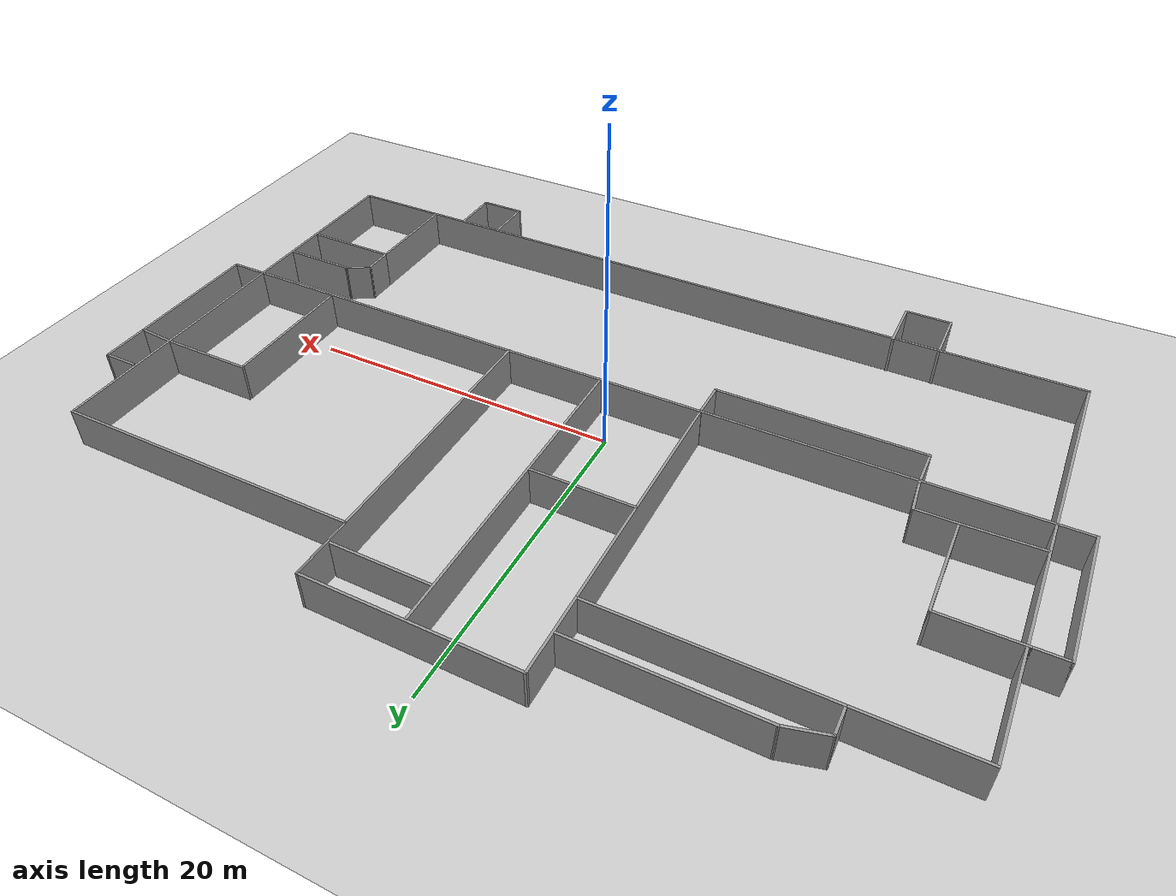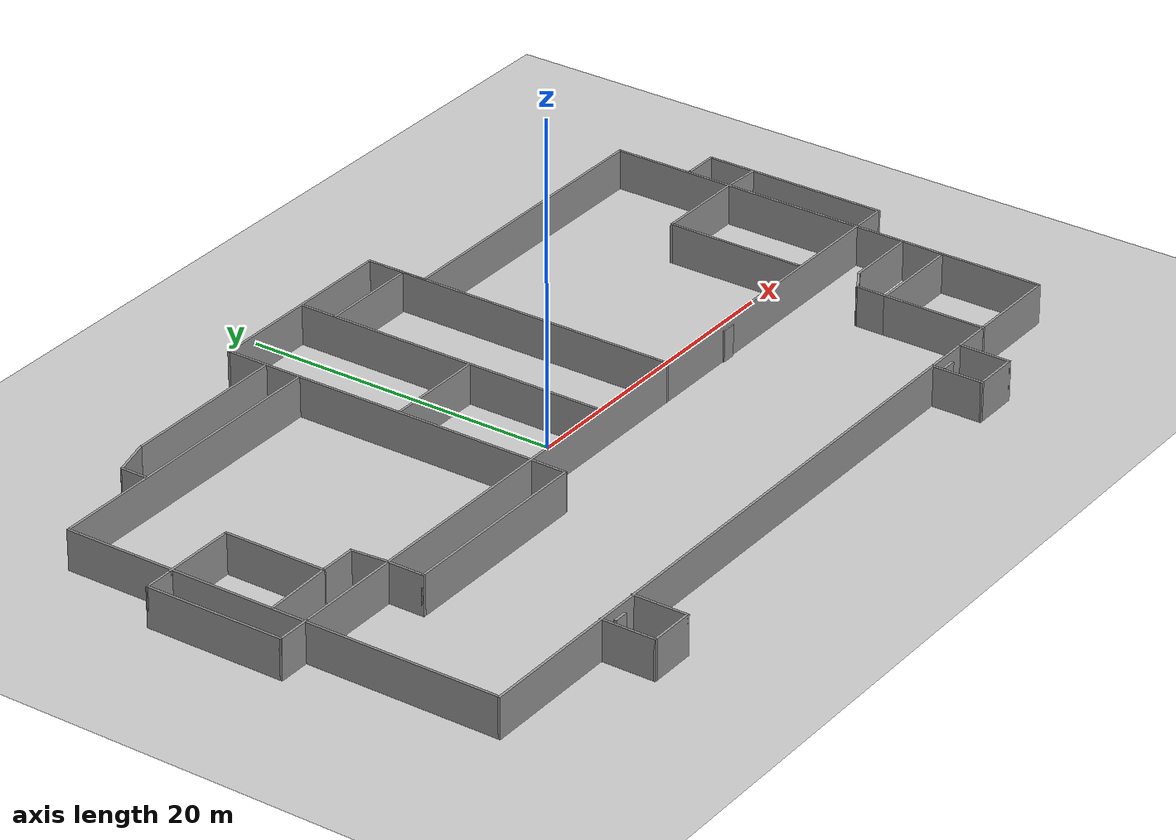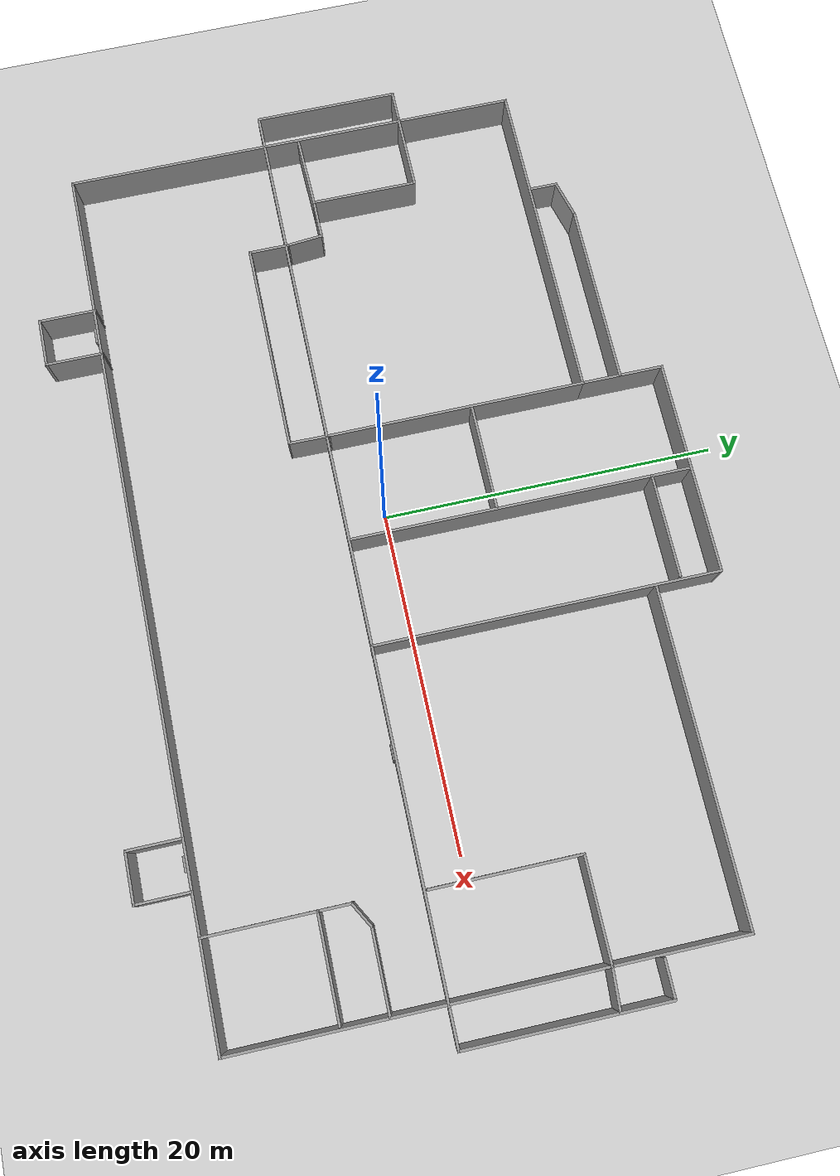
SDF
<sdf version="1.7">
 <world name="default">
  <model name="ground_plane">
   <static>1</static>
   <link name="link">
    <collision name="collision">
     <geometry><plane><normal>0 0 1</normal><size>100 100</size></plane></geometry>
     <surface>
      <contact><collide_bitmask>65535</collide_bitmask></contact>
      <friction><ode><mu>100</mu><mu2>50</mu2></ode></friction>
     </surface>
    </collision>
    <visual name="visual">
     <cast_shadows>0</cast_shadows>
     <geometry><plane><normal>0 0 1</normal><size>100 100</size></plane></geometry>
     <material>
      <script><uri>file://media/materials/scripts/gazebo.material</uri><name>Gazebo/Grey</name></script>
     </material>
    </visual>
   </link>
  </model>
  <model name="NankiAirport_1F">
   <pose>1.5023 0.065 0 0 -0 0</pose>
   <link name="Door_0">
    <collision name="Door_0_Collision">
     <geometry><box><size>0.9 0.17 2</size></box></geometry>
     <pose>0 0 1 0 -0 0</pose>
    </collision>
    <visual name="Door_0_Visual">
     <pose>0 0 1 0 -0 0</pose>
     <geometry><box><size>0.9 0.17 2</size></box></geometry>
     <material>
      <script><uri>file://media/materials/scripts/gazebo.material</uri><name>Gazebo/Grey</name></script>
     </material>
    </visual>
    <pose>-15.871 -14.7686 0 0 -0 0</pose>
   </link>
   <link name="Door_1">
    <collision name="Door_1_Collision">
     <geometry><box><size>0.9 0.17 2</size></box></geometry>
     <pose>0 0 1 0 -0 0</pose>
    </collision>
    <visual name="Door_1_Visual">
     <pose>0 0 1 0 -0 0</pose>
     <geometry><box><size>0.9 0.17 2</size></box></geometry>
     <material>
      <script><uri>file://media/materials/scripts/gazebo.material</uri><name>Gazebo/Grey</name></script>
     </material>
    </visual>
    <pose>15.7475 -14.7686 0 0 -0 0</pose>
   </link>
   <link name="Door_2">
    <collision name="Door_2_Collision">
     <geometry><box><size>0.9 0.17 2</size></box></geometry>
     <pose>0 0 1 0 -0 0</pose>
    </collision>
    <visual name="Door_2_Visual">
     <pose>0 0 1 0 -0 0</pose>
     <geometry><box><size>0.9 0.17 2</size></box></geometry>
     <material>
      <script><uri>file://media/materials/scripts/gazebo.material</uri><name>Gazebo/Grey</name></script>
     </material>
    </visual>
    <pose>12.288 -2.5395 0 0 -0 0</pose>
   </link>
   <link name="Wall_100">
    <collision name="Wall_100_Collision">
     <geometry><box><size>4.53601 0.15 2.5</size></box></geometry>
     <pose>0 0 1.25 0 -0 0</pose>
    </collision>
    <visual name="Wall_100_Visual">
     <pose>0 0 1.25 0 -0 0</pose>
     <geometry><box><size>4.53601 0.15 2.5</size></box></geometry>
     <material>
      <script><uri>file://media/materials/scripts/gazebo.material</uri><name>Gazebo/Grey</name></script>
      <ambient>1 1 1 1</ambient>
     </material>
     <meta><layer>0</layer></meta>
    </visual>
    <pose>-23.7699 -0.271537 0 0 -0 0.028499</pose>
   </link>
   <link name="Wall_102">
    <collision name="Wall_102_Collision">
     <geometry><box><size>2.25 0.15 2.5</size></box></geometry>
     <pose>0 0 1.25 0 -0 0</pose>
    </collision>
    <visual name="Wall_102_Visual">
     <pose>0 0 1.25 0 -0 0</pose>
     <geometry><box><size>2.25 0.15 2.5</size></box></geometry>
     <material>
      <script><uri>file://media/materials/scripts/gazebo.material</uri><name>Gazebo/Grey</name></script>
      <ambient>1 1 1 1</ambient>
     </material>
     <meta><layer>0</layer></meta>
    </visual>
    <pose>26.9722 -2.45905 0 0 -0 0</pose>
   </link>
   <link name="Wall_103">
    <collision name="Wall_103_Collision">
     <geometry><box><size>11.75 0.15 2.5</size></box></geometry>
     <pose>0 0 1.25 0 -0 0</pose>
    </collision>
    <visual name="Wall_103_Visual">
     <pose>0 0 1.25 0 -0 0</pose>
     <geometry><box><size>11.75 0.15 2.5</size></box></geometry>
     <material>
      <script><uri>file://media/materials/scripts/gazebo.material</uri><name>Gazebo/Grey</name></script>
      <ambient>1 1 1 1</ambient>
     </material>
     <meta><layer>0</layer></meta>
    </visual>
    <pose>28.0222 3.34095 0 0 -0 1.5708</pose>
   </link>
   <link name="Wall_104">
    <collision name="Wall_104_Collision">
     <geometry><box><size>2.25 0.15 2.5</size></box></geometry>
     <pose>0 0 1.25 0 -0 0</pose>
    </collision>
    <visual name="Wall_104_Visual">
     <pose>0 0 1.25 0 -0 0</pose>
     <geometry><box><size>2.25 0.15 2.5</size></box></geometry>
     <material>
      <script><uri>file://media/materials/scripts/gazebo.material</uri><name>Gazebo/Grey</name></script>
      <ambient>1 1 1 1</ambient>
     </material>
     <meta><layer>0</layer></meta>
    </visual>
    <pose>26.9722 9.14095 0 0 -0 3.14159</pose>
   </link>
   <link name="Wall_106">
    <collision name="Wall_106_Collision">
     <geometry><box><size>2.48872 0.15 2.5</size></box></geometry>
     <pose>0 0 1.25 0 -0 0</pose>
    </collision>
    <visual name="Wall_106_Visual">
     <pose>0 0 1.25 0 -0 0</pose>
     <geometry><box><size>2.48872 0.15 2.5</size></box></geometry>
     <material>
      <script><uri>file://media/materials/scripts/gazebo.material</uri><name>Gazebo/Grey</name></script>
      <ambient>1 1 1 1</ambient>
     </material>
     <meta><layer>0</layer></meta>
    </visual>
    <pose>26.8562 6.26323 0 0 -0 3.07274</pose>
   </link>
   <link name="Wall_108">
    <collision name="Wall_108_Collision">
     <geometry><box><size>1.75 0.15 2.5</size></box></geometry>
     <pose>0 0 1.25 0 -0 0</pose>
    </collision>
    <visual name="Wall_108_Visual">
     <pose>0 0 1.25 0 -0 0</pose>
     <geometry><box><size>1.75 0.15 2.5</size></box></geometry>
     <material>
      <script><uri>file://media/materials/scripts/gazebo.material</uri><name>Gazebo/Grey</name></script>
      <ambient>1 1 1 1</ambient>
     </material>
     <meta><layer>0</layer></meta>
    </visual>
    <pose>-19.6061 13.9018 0 0 -0 1.5708</pose>
   </link>
   <link name="Wall_109">
    <collision name="Wall_109_Collision">
     <geometry><box><size>2.5 0.15 2.5</size></box></geometry>
     <pose>0 0 1.25 0 -0 0</pose>
    </collision>
    <visual name="Wall_109_Visual">
     <pose>0 0 1.25 0 -0 0</pose>
     <geometry><box><size>2.5 0.15 2.5</size></box></geometry>
     <material>
      <script><uri>file://media/materials/scripts/gazebo.material</uri><name>Gazebo/Grey</name></script>
      <ambient>1 1 1 1</ambient>
     </material>
     <meta><layer>0</layer></meta>
    </visual>
    <pose>-18.4712 15.006 0 0 -0 0.261799</pose>
   </link>
   <link name="Wall_110">
    <collision name="Wall_110_Collision">
     <geometry><box><size>11 0.15 2.5</size></box></geometry>
     <pose>0 0 1.25 0 -0 0</pose>
    </collision>
    <visual name="Wall_110_Visual">
     <pose>0 0 1.25 0 -0 0</pose>
     <geometry><box><size>11 0.15 2.5</size></box></geometry>
     <material>
      <script><uri>file://media/materials/scripts/gazebo.material</uri><name>Gazebo/Grey</name></script>
      <ambient>1 1 1 1</ambient>
     </material>
     <meta><layer>0</layer></meta>
    </visual>
    <pose>-11.9112 15.3101 0 0 -0 0</pose>
   </link>
   <link name="Wall_32">
    <collision name="Wall_32_Collision">
     <geometry><box><size>52 0.15 2.5</size></box></geometry>
     <pose>0 0 1.25 0 -0 0</pose>
    </collision>
    <visual name="Wall_32_Visual">
     <pose>0 0 1.25 0 -0 0</pose>
     <geometry><box><size>52 0.15 2.5</size></box></geometry>
     <material>
      <script><uri>file://media/materials/scripts/gazebo.material</uri><name>Gazebo/Grey</name></script>
      <ambient>1 1 1 1</ambient>
     </material>
     <meta><layer>0</layer></meta>
    </visual>
    <pose>-0.002788 -2.45905 0 0 -0 0</pose>
   </link>
   <link name="Wall_41">
    <collision name="Wall_41_Collision">
     <geometry><box><size>3.25 0.15 2.5</size></box></geometry>
     <pose>0 0 1.25 0 -0 0</pose>
    </collision>
    <visual name="Wall_41_Visual">
     <pose>0 0 1.25 0 -0 0</pose>
     <geometry><box><size>3.25 0.15 2.5</size></box></geometry>
     <material>
      <script><uri>file://media/materials/scripts/gazebo.material</uri><name>Gazebo/Grey</name></script>
      <ambient>1 1 1 1</ambient>
     </material>
     <meta><layer>0</layer></meta>
    </visual>
    <pose>17.261 -16.1693 0 0 -0 -1.5708</pose>
   </link>
   <link name="Wall_42">
    <collision name="Wall_42_Collision">
     <geometry><box><size>3 0.15 2.5</size></box></geometry>
     <pose>0 0 1.25 0 -0 0</pose>
    </collision>
    <visual name="Wall_42_Visual">
     <pose>0 0 1.25 0 -0 0</pose>
     <geometry><box><size>3 0.15 2.5</size></box></geometry>
     <material>
      <script><uri>file://media/materials/scripts/gazebo.material</uri><name>Gazebo/Grey</name></script>
      <ambient>1 1 1 1</ambient>
     </material>
     <meta><layer>0</layer></meta>
    </visual>
    <pose>15.836 -17.7193 0 0 -0 3.14159</pose>
   </link>
   <link name="Wall_43">
    <collision name="Wall_43_Collision">
     <geometry><box><size>3.25 0.15 2.5</size></box></geometry>
     <pose>0 0 1.25 0 -0 0</pose>
    </collision>
    <visual name="Wall_43_Visual">
     <pose>0 0 1.25 0 -0 0</pose>
     <geometry><box><size>3.25 0.15 2.5</size></box></geometry>
     <material>
      <script><uri>file://media/materials/scripts/gazebo.material</uri><name>Gazebo/Grey</name></script>
      <ambient>1 1 1 1</ambient>
     </material>
     <meta><layer>0</layer></meta>
    </visual>
    <pose>14.411 -16.1693 0 0 -0 1.5708</pose>
   </link>
   <link name="Wall_45">
    <collision name="Wall_45_Collision">
     <geometry><box><size>3.5 0.15 2.5</size></box></geometry>
     <pose>0 0 1.25 0 -0 0</pose>
    </collision>
    <visual name="Wall_45_Visual">
     <pose>0 0 1.25 0 -0 0</pose>
     <geometry><box><size>3.5 0.15 2.5</size></box></geometry>
     <material>
      <script><uri>file://media/materials/scripts/gazebo.material</uri><name>Gazebo/Grey</name></script>
      <ambient>1 1 1 1</ambient>
     </material>
     <meta><layer>0</layer></meta>
    </visual>
    <pose>-14.41 -16.2023 0 0 -0 -1.5708</pose>
   </link>
   <link name="Wall_46">
    <collision name="Wall_46_Collision">
     <geometry><box><size>3 0.15 2.5</size></box></geometry>
     <pose>0 0 1.25 0 -0 0</pose>
    </collision>
    <visual name="Wall_46_Visual">
     <pose>0 0 1.25 0 -0 0</pose>
     <geometry><box><size>3 0.15 2.5</size></box></geometry>
     <material>
      <script><uri>file://media/materials/scripts/gazebo.material</uri><name>Gazebo/Grey</name></script>
      <ambient>1 1 1 1</ambient>
     </material>
     <meta><layer>0</layer></meta>
    </visual>
    <pose>-15.835 -17.8773 0 0 -0 3.14159</pose>
   </link>
   <link name="Wall_47">
    <collision name="Wall_47_Collision">
     <geometry><box><size>3.5 0.15 2.5</size></box></geometry>
     <pose>0 0 1.25 0 -0 0</pose>
    </collision>
    <visual name="Wall_47_Visual">
     <pose>0 0 1.25 0 -0 0</pose>
     <geometry><box><size>3.5 0.15 2.5</size></box></geometry>
     <material>
      <script><uri>file://media/materials/scripts/gazebo.material</uri><name>Gazebo/Grey</name></script>
      <ambient>1 1 1 1</ambient>
     </material>
     <meta><layer>0</layer></meta>
    </visual>
    <pose>-17.26 -16.2023 0 0 -0 1.5708</pose>
   </link>
   <link name="Wall_54">
    <collision name="Wall_54_Collision">
     <geometry><box><size>20.5 0.15 2.5</size></box></geometry>
     <pose>0 0 1.25 0 -0 0</pose>
    </collision>
    <visual name="Wall_54_Visual">
     <pose>0 0 1.25 0 -0 0</pose>
     <geometry><box><size>20.5 0.15 2.5</size></box></geometry>
     <material>
      <script><uri>file://media/materials/scripts/gazebo.material</uri><name>Gazebo/Grey</name></script>
      <ambient>1 1 1 1</ambient>
     </material>
     <meta><layer>0</layer></meta>
    </visual>
    <pose>6.34318 7.70228 0 0 -0 1.5708</pose>
   </link>
   <link name="Wall_57">
    <collision name="Wall_57_Collision">
     <geometry><box><size>20.25 0.15 2.5</size></box></geometry>
     <pose>0 0 1.25 0 -0 0</pose>
    </collision>
    <visual name="Wall_57_Visual">
     <pose>0 0 1.25 0 -0 0</pose>
     <geometry><box><size>20.25 0.15 2.5</size></box></geometry>
     <material>
      <script><uri>file://media/materials/scripts/gazebo.material</uri><name>Gazebo/Grey</name></script>
      <ambient>1 1 1 1</ambient>
     </material>
     <meta><layer>0</layer></meta>
    </visual>
    <pose>0.024714 7.70462 0 0 -0 1.5708</pose>
   </link>
   <link name="Wall_62">
    <collision name="Wall_62_Collision">
     <geometry><box><size>27.75 0.15 2.5</size></box></geometry>
     <pose>0 0 1.25 0 -0 0</pose>
    </collision>
    <visual name="Wall_62_Visual">
     <pose>0 0 1.25 0 -0 0</pose>
     <geometry><box><size>27.75 0.15 2.5</size></box></geometry>
     <material>
      <script><uri>file://media/materials/scripts/gazebo.material</uri><name>Gazebo/Grey</name></script>
      <ambient>1 1 1 1</ambient>
     </material>
     <meta><layer>0</layer></meta>
    </visual>
    <pose>-26.0425 -0.774435 0 0 -0 1.5708</pose>
   </link>
   <link name="Wall_63">
    <collision name="Wall_63_Collision">
     <geometry><box><size>19.75 0.15 2.5</size></box></geometry>
     <pose>0 0 1.25 0 -0 0</pose>
    </collision>
    <visual name="Wall_63_Visual">
     <pose>0 0 1.25 0 -0 0</pose>
     <geometry><box><size>19.75 0.15 2.5</size></box></geometry>
     <material>
      <script><uri>file://media/materials/scripts/gazebo.material</uri><name>Gazebo/Grey</name></script>
      <ambient>1 1 1 1</ambient>
     </material>
     <meta><layer>0</layer></meta>
    </visual>
    <pose>-16.2425 13.0256 0 0 -0 0</pose>
   </link>
   <link name="Wall_64">
    <collision name="Wall_64_Collision">
     <geometry><box><size>5 0.15 2.5</size></box></geometry>
     <pose>0 0 1.25 0 -0 0</pose>
    </collision>
    <visual name="Wall_64_Visual">
     <pose>0 0 1.25 0 -0 0</pose>
     <geometry><box><size>5 0.15 2.5</size></box></geometry>
     <material>
      <script><uri>file://media/materials/scripts/gazebo.material</uri><name>Gazebo/Grey</name></script>
      <ambient>1 1 1 1</ambient>
     </material>
     <meta><layer>0</layer></meta>
    </visual>
    <pose>-6.44247 15.4506 0 0 -0 1.5708</pose>
   </link>
   <link name="Wall_65">
    <collision name="Wall_65_Collision">
     <geometry><box><size>12.9357 0.15 2.5</size></box></geometry>
     <pose>0 0 1.25 0 -0 0</pose>
    </collision>
    <visual name="Wall_65_Visual">
     <pose>0 0 1.25 0 -0 0</pose>
     <geometry><box><size>12.9357 0.15 2.5</size></box></geometry>
     <material>
      <script><uri>file://media/materials/scripts/gazebo.material</uri><name>Gazebo/Grey</name></script>
      <ambient>1 1 1 1</ambient>
     </material>
     <meta><layer>0</layer></meta>
    </visual>
    <pose>-0.049649 17.8764 0 0 -0 0.000134</pose>
   </link>
   <link name="Wall_66">
    <collision name="Wall_66_Collision">
     <geometry><box><size>4 0.15 2.5</size></box></geometry>
     <pose>0 0 1.25 0 -0 0</pose>
    </collision>
    <visual name="Wall_66_Visual">
     <pose>0 0 1.25 0 -0 0</pose>
     <geometry><box><size>4 0.15 2.5</size></box></geometry>
     <material>
      <script><uri>file://media/materials/scripts/gazebo.material</uri><name>Gazebo/Grey</name></script>
      <ambient>1 1 1 1</ambient>
     </material>
     <meta><layer>0</layer></meta>
    </visual>
    <pose>6.34318 15.9523 0 0 -0 -1.5708</pose>
   </link>
   <link name="Wall_67">
    <collision name="Wall_67_Collision">
     <geometry><box><size>19.5 0.15 2.5</size></box></geometry>
     <pose>0 0 1.25 0 -0 0</pose>
    </collision>
    <visual name="Wall_67_Visual">
     <pose>0 0 1.25 0 -0 0</pose>
     <geometry><box><size>19.5 0.15 2.5</size></box></geometry>
     <material>
      <script><uri>file://media/materials/scripts/gazebo.material</uri><name>Gazebo/Grey</name></script>
      <ambient>1 1 1 1</ambient>
     </material>
     <meta><layer>0</layer></meta>
    </visual>
    <pose>16.0182 14.0273 0 0 -0 0</pose>
   </link>
   <link name="Wall_68">
    <collision name="Wall_68_Collision">
     <geometry><box><size>28.75 0.15 2.5</size></box></geometry>
     <pose>0 0 1.25 0 -0 0</pose>
    </collision>
    <visual name="Wall_68_Visual">
     <pose>0 0 1.25 0 -0 0</pose>
     <geometry><box><size>28.75 0.15 2.5</size></box></geometry>
     <material>
      <script><uri>file://media/materials/scripts/gazebo.material</uri><name>Gazebo/Grey</name></script>
      <ambient>1 1 1 1</ambient>
     </material>
     <meta><layer>0</layer></meta>
    </visual>
    <pose>25.6932 -0.272716 0 0 -0 -1.5708</pose>
   </link>
   <link name="Wall_69">
    <collision name="Wall_69_Collision">
     <geometry><box><size>51.8857 0.15 2.5</size></box></geometry>
     <pose>0 0 1.25 0 -0 0</pose>
    </collision>
    <visual name="Wall_69_Visual">
     <pose>0 0 1.25 0 -0 0</pose>
     <geometry><box><size>51.8857 0.15 2.5</size></box></geometry>
     <material>
      <script><uri>file://media/materials/scripts/gazebo.material</uri><name>Gazebo/Grey</name></script>
      <ambient>1 1 1 1</ambient>
     </material>
     <meta><layer>0</layer></meta>
    </visual>
    <pose>-0.174649 -14.5736 0 0 -0 -3.14156</pose>
   </link>
   <link name="Wall_71">
    <collision name="Wall_71_Collision">
     <geometry><box><size>15.521 0.15 2.5</size></box></geometry>
     <pose>0 0 1.25 0 -0 0</pose>
    </collision>
    <visual name="Wall_71_Visual">
     <pose>0 0 1.25 0 -0 0</pose>
     <geometry><box><size>15.521 0.15 2.5</size></box></geometry>
     <material>
      <script><uri>file://media/materials/scripts/gazebo.material</uri><name>Gazebo/Grey</name></script>
      <ambient>1 1 1 1</ambient>
     </material>
     <meta><layer>0</layer></meta>
    </visual>
    <pose>-6.42705 5.34009 0 0 -0 1.5728</pose>
   </link>
   <link name="Wall_73">
    <collision name="Wall_73_Collision">
     <geometry><box><size>6.5 0.15 2.5</size></box></geometry>
     <pose>0 0 1.25 0 -0 0</pose>
    </collision>
    <visual name="Wall_73_Visual">
     <pose>0 0 1.25 0 -0 0</pose>
     <geometry><box><size>6.5 0.15 2.5</size></box></geometry>
     <material>
      <script><uri>file://media/materials/scripts/gazebo.material</uri><name>Gazebo/Grey</name></script>
      <ambient>1 1 1 1</ambient>
     </material>
     <meta><layer>0</layer></meta>
    </visual>
    <pose>-3.23663 6.26323 0 0 -0 0</pose>
   </link>
   <link name="Wall_75">
    <collision name="Wall_75_Collision">
     <geometry><box><size>6.25 0.15 2.5</size></box></geometry>
     <pose>0 0 1.25 0 -0 0</pose>
    </collision>
    <visual name="Wall_75_Visual">
     <pose>0 0 1.25 0 -0 0</pose>
     <geometry><box><size>6.25 0.15 2.5</size></box></geometry>
     <material>
      <script><uri>file://media/materials/scripts/gazebo.material</uri><name>Gazebo/Grey</name></script>
      <ambient>1 1 1 1</ambient>
     </material>
     <meta><layer>0</layer></meta>
    </visual>
    <pose>3.07471 15.5155 0 0 -0 0</pose>
   </link>
   <link name="Wall_77">
    <collision name="Wall_77_Collision">
     <geometry><box><size>6 0.15 2.5</size></box></geometry>
     <pose>0 0 1.25 0 -0 0</pose>
    </collision>
    <visual name="Wall_77_Visual">
     <pose>0 0 1.25 0 -0 0</pose>
     <geometry><box><size>6 0.15 2.5</size></box></geometry>
     <material>
      <script><uri>file://media/materials/scripts/gazebo.material</uri><name>Gazebo/Grey</name></script>
      <ambient>1 1 1 1</ambient>
     </material>
     <meta><layer>0</layer></meta>
    </visual>
    <pose>22.7646 6.34368 0 0 -0 3.14159</pose>
   </link>
   <link name="Wall_78">
    <collision name="Wall_78_Collision">
     <geometry><box><size>8.75 0.15 2.5</size></box></geometry>
     <pose>0 0 1.25 0 -0 0</pose>
    </collision>
    <visual name="Wall_78_Visual">
     <pose>0 0 1.25 0 -0 0</pose>
     <geometry><box><size>8.75 0.15 2.5</size></box></geometry>
     <material>
      <script><uri>file://media/materials/scripts/gazebo.material</uri><name>Gazebo/Grey</name></script>
      <ambient>1 1 1 1</ambient>
     </material>
     <meta><layer>0</layer></meta>
    </visual>
    <pose>19.8396 2.04368 0 0 -0 -1.5708</pose>
   </link>
   <link name="Wall_80">
    <collision name="Wall_80_Collision">
     <geometry><box><size>2.5 0.15 2.5</size></box></geometry>
     <pose>0 0 1.25 0 -0 0</pose>
    </collision>
    <visual name="Wall_80_Visual">
     <pose>0 0 1.25 0 -0 0</pose>
     <geometry><box><size>2.5 0.15 2.5</size></box></geometry>
     <material>
      <script><uri>file://media/materials/scripts/gazebo.material</uri><name>Gazebo/Grey</name></script>
      <ambient>1 1 1 1</ambient>
     </material>
     <meta><layer>0</layer></meta>
    </visual>
    <pose>-19.043 -3.52038 0 0 -0 -1.5708</pose>
   </link>
   <link name="Wall_81">
    <collision name="Wall_81_Collision">
     <geometry><box><size>12.75 0.15 2.5</size></box></geometry>
     <pose>0 0 1.25 0 -0 0</pose>
    </collision>
    <visual name="Wall_81_Visual">
     <pose>0 0 1.25 0 -0 0</pose>
     <geometry><box><size>12.75 0.15 2.5</size></box></geometry>
     <material>
      <script><uri>file://media/materials/scripts/gazebo.material</uri><name>Gazebo/Grey</name></script>
      <ambient>1 1 1 1</ambient>
     </material>
     <meta><layer>0</layer></meta>
    </visual>
    <pose>-12.743 -4.69538 0 0 -0 0</pose>
   </link>
   <link name="Wall_82">
    <collision name="Wall_82_Collision">
     <geometry><box><size>2.50021 0.15 2.5</size></box></geometry>
     <pose>0 0 1.25 0 -0 0</pose>
    </collision>
    <visual name="Wall_82_Visual">
     <pose>0 0 1.25 0 -0 0</pose>
     <geometry><box><size>2.50021 0.15 2.5</size></box></geometry>
     <material>
      <script><uri>file://media/materials/scripts/gazebo.material</uri><name>Gazebo/Grey</name></script>
      <ambient>1 1 1 1</ambient>
     </material>
     <meta><layer>0</layer></meta>
    </visual>
    <pose>-6.42729 -3.52038 0 0 -0 1.55747</pose>
   </link>
   <link name="Wall_84">
    <collision name="Wall_84_Collision">
     <geometry><box><size>6.5 0.15 2.5</size></box></geometry>
     <pose>0 0 1.25 0 -0 0</pose>
    </collision>
    <visual name="Wall_84_Visual">
     <pose>0 0 1.25 0 -0 0</pose>
     <geometry><box><size>6.5 0.15 2.5</size></box></geometry>
     <material>
      <script><uri>file://media/materials/scripts/gazebo.material</uri><name>Gazebo/Grey</name></script>
      <ambient>1 1 1 1</ambient>
     </material>
     <meta><layer>0</layer></meta>
    </visual>
    <pose>19.6556 -11.3994 0 0 -0 1.5708</pose>
   </link>
   <link name="Wall_85">
    <collision name="Wall_85_Collision">
     <geometry><box><size>6 0.15 2.5</size></box></geometry>
     <pose>0 0 1.25 0 -0 0</pose>
    </collision>
    <visual name="Wall_85_Visual">
     <pose>0 0 1.25 0 -0 0</pose>
     <geometry><box><size>6 0.15 2.5</size></box></geometry>
     <material>
      <script><uri>file://media/materials/scripts/gazebo.material</uri><name>Gazebo/Grey</name></script>
      <ambient>1 1 1 1</ambient>
     </material>
     <meta><layer>0</layer></meta>
    </visual>
    <pose>22.5806 -8.22444 0 0 -0 0</pose>
   </link>
   <link name="Wall_87">
    <collision name="Wall_87_Collision">
     <geometry><box><size>2 0.15 2.5</size></box></geometry>
     <pose>0 0 1.25 0 -0 0</pose>
    </collision>
    <visual name="Wall_87_Visual">
     <pose>0 0 1.25 0 -0 0</pose>
     <geometry><box><size>2 0.15 2.5</size></box></geometry>
     <material>
      <script><uri>file://media/materials/scripts/gazebo.material</uri><name>Gazebo/Grey</name></script>
      <ambient>1 1 1 1</ambient>
     </material>
     <meta><layer>0</layer></meta>
    </visual>
    <pose>19.6556 -7.29943 0 0 -0 1.5708</pose>
   </link>
   <link name="Wall_88">
    <collision name="Wall_88_Collision">
     <geometry><box><size>1.75 0.15 2.5</size></box></geometry>
     <pose>0 0 1.25 0 -0 0</pose>
    </collision>
    <visual name="Wall_88_Visual">
     <pose>0 0 1.25 0 -0 0</pose>
     <geometry><box><size>1.75 0.15 2.5</size></box></geometry>
     <material>
      <script><uri>file://media/materials/scripts/gazebo.material</uri><name>Gazebo/Grey</name></script>
      <ambient>1 1 1 1</ambient>
     </material>
     <meta><layer>0</layer></meta>
    </visual>
    <pose>20.3484 -5.97443 0 0 -0 0.523599</pose>
   </link>
   <link name="Wall_89">
    <collision name="Wall_89_Collision">
     <geometry><box><size>4.75 0.15 2.5</size></box></geometry>
     <pose>0 0 1.25 0 -0 0</pose>
    </collision>
    <visual name="Wall_89_Visual">
     <pose>0 0 1.25 0 -0 0</pose>
     <geometry><box><size>4.75 0.15 2.5</size></box></geometry>
     <material>
      <script><uri>file://media/materials/scripts/gazebo.material</uri><name>Gazebo/Grey</name></script>
      <ambient>1 1 1 1</ambient>
     </material>
     <meta><layer>0</layer></meta>
    </visual>
    <pose>23.3412 -5.57444 0 0 -0 0</pose>
   </link>
   <link name="Wall_91">
    <collision name="Wall_91_Collision">
     <geometry><box><size>2.25 0.15 2.5</size></box></geometry>
     <pose>0 0 1.25 0 -0 0</pose>
    </collision>
    <visual name="Wall_91_Visual">
     <pose>0 0 1.25 0 -0 0</pose>
     <geometry><box><size>2.25 0.15 2.5</size></box></geometry>
     <material>
      <script><uri>file://media/materials/scripts/gazebo.material</uri><name>Gazebo/Grey</name></script>
      <ambient>1 1 1 1</ambient>
     </material>
     <meta><layer>0</layer></meta>
    </visual>
    <pose>-26.9778 -2.45905 0 0 -0 3.14159</pose>
   </link>
   <link name="Wall_92">
    <collision name="Wall_92_Collision">
     <geometry><box><size>8.75 0.15 2.5</size></box></geometry>
     <pose>0 0 1.25 0 -0 0</pose>
    </collision>
    <visual name="Wall_92_Visual">
     <pose>0 0 1.25 0 -0 0</pose>
     <geometry><box><size>8.75 0.15 2.5</size></box></geometry>
     <material>
      <script><uri>file://media/materials/scripts/gazebo.material</uri><name>Gazebo/Grey</name></script>
      <ambient>1 1 1 1</ambient>
     </material>
     <meta><layer>0</layer></meta>
    </visual>
    <pose>-28.0278 1.84095 0 0 -0 1.5708</pose>
   </link>
   <link name="Wall_93">
    <collision name="Wall_93_Collision">
     <geometry><box><size>2 0.15 2.5</size></box></geometry>
     <pose>0 0 1.25 0 -0 0</pose>
    </collision>
    <visual name="Wall_93_Visual">
     <pose>0 0 1.25 0 -0 0</pose>
     <geometry><box><size>2 0.15 2.5</size></box></geometry>
     <material>
      <script><uri>file://media/materials/scripts/gazebo.material</uri><name>Gazebo/Grey</name></script>
      <ambient>1 1 1 1</ambient>
     </material>
     <meta><layer>0</layer></meta>
    </visual>
    <pose>-27.1028 6.14095 0 0 -0 0</pose>
   </link>
   <link name="Wall_95">
    <collision name="Wall_95_Collision">
     <geometry><box><size>4.75 0.15 2.5</size></box></geometry>
     <pose>0 0 1.25 0 -0 0</pose>
    </collision>
    <visual name="Wall_95_Visual">
     <pose>0 0 1.25 0 -0 0</pose>
     <geometry><box><size>4.75 0.15 2.5</size></box></geometry>
     <material>
      <script><uri>file://media/materials/scripts/gazebo.material</uri><name>Gazebo/Grey</name></script>
      <ambient>1 1 1 1</ambient>
     </material>
     <meta><layer>0</layer></meta>
    </visual>
    <pose>-23.8778 6.14095 0 0 -0 0</pose>
   </link>
   <link name="Wall_96">
    <collision name="Wall_96_Collision">
     <geometry><box><size>6.5 0.15 2.5</size></box></geometry>
     <pose>0 0 1.25 0 -0 0</pose>
    </collision>
    <visual name="Wall_96_Visual">
     <pose>0 0 1.25 0 -0 0</pose>
     <geometry><box><size>6.5 0.15 2.5</size></box></geometry>
     <material>
      <script><uri>file://media/materials/scripts/gazebo.material</uri><name>Gazebo/Grey</name></script>
      <ambient>1 1 1 1</ambient>
     </material>
     <meta><layer>0</layer></meta>
    </visual>
    <pose>-21.5778 2.96595 0 0 -0 -1.5708</pose>
   </link>
   <link name="Wall_97">
    <collision name="Wall_97_Collision">
     <geometry><box><size>2.5 0.15 2.5</size></box></geometry>
     <pose>0 0 1.25 0 -0 0</pose>
    </collision>
    <visual name="Wall_97_Visual">
     <pose>0 0 1.25 0 -0 0</pose>
     <geometry><box><size>2.5 0.15 2.5</size></box></geometry>
     <material>
      <script><uri>file://media/materials/scripts/gazebo.material</uri><name>Gazebo/Grey</name></script>
      <ambient>1 1 1 1</ambient>
     </material>
     <meta><layer>0</layer></meta>
    </visual>
    <pose>-20.4028 -0.209047 0 0 -0 0</pose>
   </link>
   <link name="Wall_98">
    <collision name="Wall_98_Collision">
     <geometry><box><size>2.29432 0.15 2.5</size></box></geometry>
     <pose>0 0 1.25 0 -0 0</pose>
    </collision>
    <visual name="Wall_98_Visual">
     <pose>0 0 1.25 0 -0 0</pose>
     <geometry><box><size>2.29432 0.15 2.5</size></box></geometry>
     <material>
      <script><uri>file://media/materials/scripts/gazebo.material</uri><name>Gazebo/Grey</name></script>
      <ambient>1 1 1 1</ambient>
     </material>
     <meta><layer>0</layer></meta>
    </visual>
    <pose>-19.1354 -1.27722 0 0 -0 -1.48449</pose>
   </link>
   <static>1</static>
  </model>
 </world>
</sdf>
